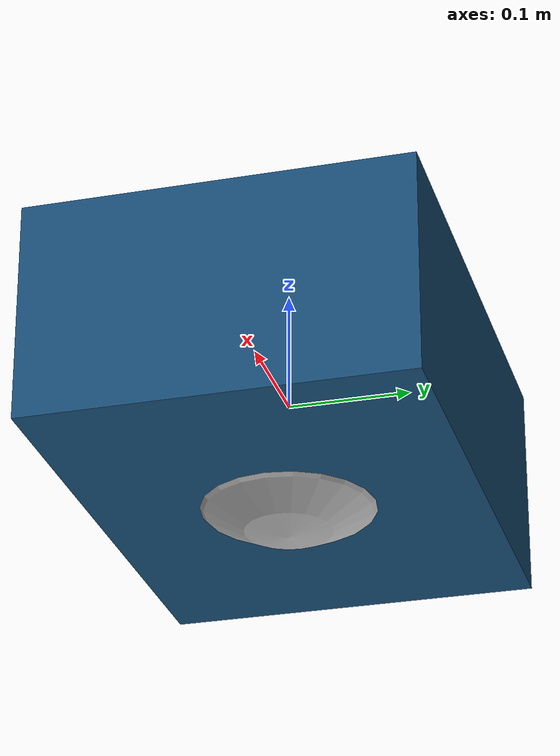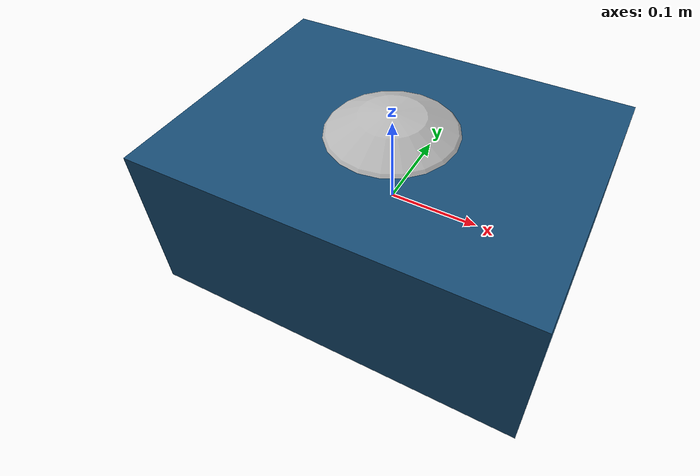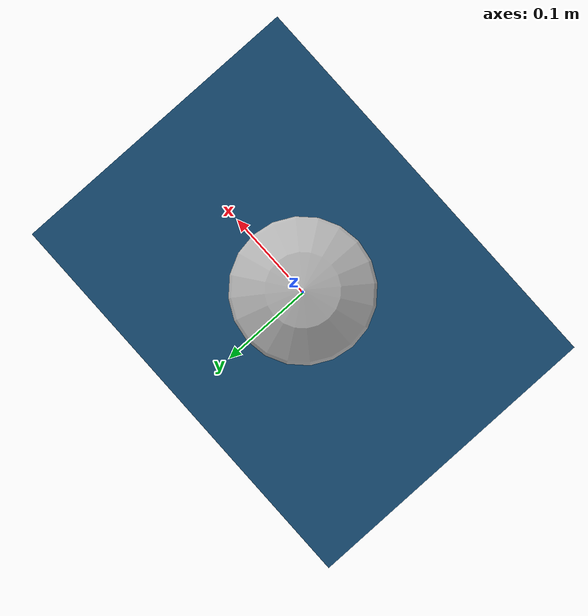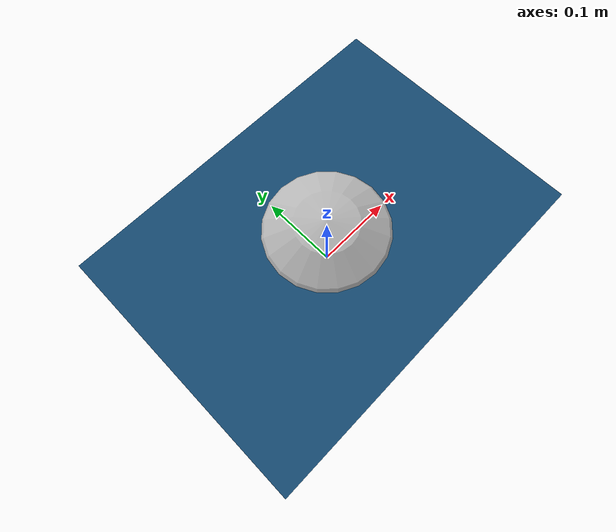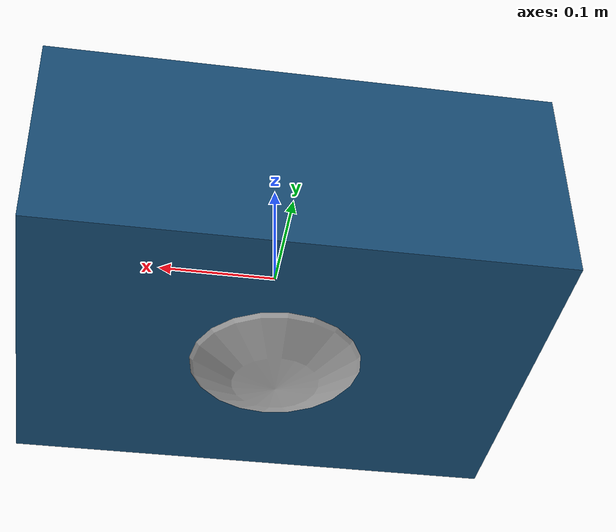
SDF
<?xml version="1.0" ?>
<sdf version="1.8">
  <model name="rescue_bot">

    <pose>0 0 0 0 0 0</pose>

    <!-- Base -->
    <link name="base_link">
      <inertial>
        <mass>1</mass>
        <inertia>
          <ixx>0.00505</ixx>
          <iyy>0.00413</iyy>
          <izz>0.00325</izz>
          <ixy>0</ixy><ixz>0</ixz><iyz>0</iyz>
        </inertia>
        <pose>0 0 0 0 0 0</pose>
      </inertial>
      <collision name="base_col">
        <geometry>
          <box><size>0.42 0.31 0.18</size></box>
        </geometry>
      </collision>
      <visual name="base_vis">
        <geometry>
          <box><size>0.42 0.31 0.18</size></box>
        </geometry>
        <material>
          <ambient>0.09 0.3 0.46 1</ambient>
        </material>
      </visual>
    </link>

    <!-- Wheels -->
    <link name="drivewhl_l_link">
      <inertial>
        <mass>2.5</mass>
        <inertia>
          <ixx>0.0085</ixx>
          <iyy>0.0085</iyy>
          <izz>0.0025</izz>
          <ixy>0</ixy><ixz>0</ixz><iyz>0</iyz>
        </inertia>
        <pose>0 0 0 1.5708 0 0</pose>
      </inertial>
      <collision name="wheel_col">
        <geometry>
          <cylinder><radius>0.10</radius><length>0.04</length></cylinder>
        </geometry>
      </collision>
      <visual name="wheel_vis">
        <geometry>
          <cylinder><radius>0.10</radius><length>0.04</length></cylinder>
        </geometry>
      </visual>
    </link>

    <link name="drivewhl_r_link">
      <inertial>
        <mass>2.5</mass>
        <inertia>
          <ixx>0.0085</ixx>
          <iyy>0.0085</iyy>
          <izz>0.0025</izz>
          <ixy>0</ixy><ixz>0</ixz><iyz>0</iyz>
        </inertia>
        <pose>0 0 0 1.5708 0 0</pose>
      </inertial>
      <collision name="wheel_col">
        <geometry>
          <cylinder><radius>0.10</radius><length>0.04</length></cylinder>
        </geometry>
      </collision>
      <visual name="wheel_vis">
        <geometry>
          <cylinder><radius>0.10</radius><length>0.04</length></cylinder>
        </geometry>
      </visual>
    </link>

    <!-- Joints -->
    <joint name="drivewhl_l_joint" type="revolute">
      <parent>base_link</parent>
      <child>drivewhl_l_link</child>
      <pose>-0.12 0.1825 -0.05 0 0 0</pose>
      <axis>
        <xyz>0 1 0</xyz>
        <limit><lower>-1e16</lower><upper>1e16</upper></limit>
      </axis>
    </joint>

    <joint name="drivewhl_r_joint" type="revolute">
      <parent>base_link</parent>
      <child>drivewhl_r_link</child>
      <pose>-0.12 -0.1825 -0.05 0 0 0</pose>
      <axis>
        <xyz>0 1 0</xyz>
        <limit><lower>-1e16</lower><upper>1e16</upper></limit>
      </axis>
    </joint>

    <!-- Caster -->
    <link name="front_caster">
      <inertial>
        <mass>0.005</mass>
        <inertia>
          <ixx>0.0001</ixx><iyy>0.0001</iyy><izz>0.0001</izz>
          <ixy>0</ixy><ixz>0</ixz><iyz>0</iyz>
        </inertia>
      </inertial>
      <collision name="caster_col">
        <geometry><sphere><radius>0.115</radius></sphere></geometry>
      </collision>
      <visual name="caster_vis">
        <geometry><sphere><radius>0.115</radius></sphere></geometry>
      </visual>
    </link>

    <joint name="caster_joint" type="fixed">
      <parent>base_link</parent>
      <child>front_caster</child>
      <pose>0.14 0 -0.09 0 0 0</pose>
    </joint>

    <!-- IMU -->
    <link name="imu_link">
      <inertial>
        <mass>0.001</mass>
        <inertia><ixx>0.0000833</ixx><iyy>0.0000833</iyy><izz>0.0000833</izz></inertia>
      </inertial>
    </link>

    <joint name="imu_joint" type="fixed">
      <parent>base_link</parent>
      <child>imu_link</child>
      <pose>0 0 0.01 0 0 0</pose>
    </joint>

    <sensor name="imu_sensor" type="imu">
      <pose>0 0 0 0 0 0</pose>
      <update_rate>100</update_rate>
      <imu>
        <angular_velocity><x><noise type="gaussian"><mean>0</mean><stddev>0.0002</stddev></noise></x></angular_velocity>
        <linear_acceleration><x><noise type="gaussian"><mean>0</mean><stddev>0.017</stddev></noise></x></linear_acceleration>
      </imu>
      <always_on>true</always_on>
      <visualize>true</visualize>
    </sensor>

    <!-- LIDAR -->
    <link name="lidar_link">
      <inertial><mass>0.125</mass><inertia><ixx>0.001</ixx><iyy>0.001</iyy><izz>0.001</izz></inertia></inertial>
    </link>

    <joint name="lidar_joint" type="fixed">
      <parent>base_link</parent>
      <child>lidar_link</child>
      <pose>0 0 0.12 0 0 0</pose>
    </joint>

    <sensor name="lidar" type="gpu_lidar">
      <pose>0 0 0 0 0 0</pose>
      <update_rate>5</update_rate>
      <ray>
        <scan>
          <horizontal><samples>360</samples><resolution>1</resolution><min_angle>0</min_angle><max_angle>6.28</max_angle></horizontal>
        </scan>
        <range><min>0.12</min><max>3.5</max><resolution>0.015</resolution></range>
        <noise><type>gaussian</type><mean>0</mean><stddev>0.01</stddev></noise>
      </ray>
      <always_on>true</always_on>
      <visualize>true</visualize>
    </sensor>

    <!-- Camera -->
    <link name="camera_link">
      <inertial><mass>0.035</mass><inertia><ixx>0.001</ixx><iyy>0.001</iyy><izz>0.001</izz></inertia></inertial>
      <visual name="camera_vis">
        <geometry><box><size>0.015 0.13 0.022</size></box></geometry>
      </visual>
      <collision name="camera_coll">
        <geometry><box><size>0.015 0.13 0.022</size></box></geometry>
      </collision>
    </link>

    <joint name="camera_joint" type="fixed">
      <parent>base_link</parent>
      <child>camera_link</child>
      <pose>0.215 0 0.05 0 0 0</pose>
    </joint>

    <sensor name="robot_cam" type="camera">
      <pose>0 0 0 0 0 0</pose>
      <camera>
        <horizontal_fov>1.047</horizontal_fov>
        <image><width>320</width><height>240</height></image>
        <clip><near>0.1</near><far>100</far></clip>
      </camera>
      <update_rate>30</update_rate>
      <always_on>true</always_on>
      <visualize>true</visualize>
    </sensor>

    <!-- ros2_control plugin -->

  </model>
</sdf>
